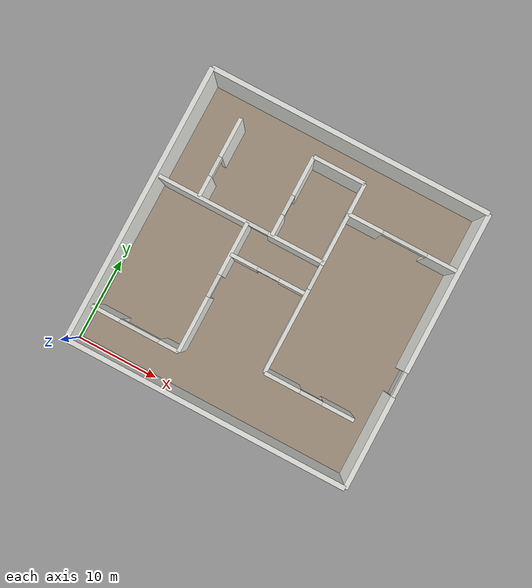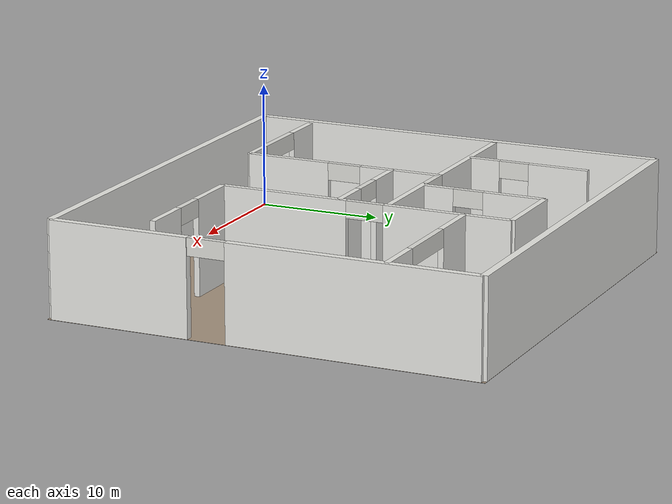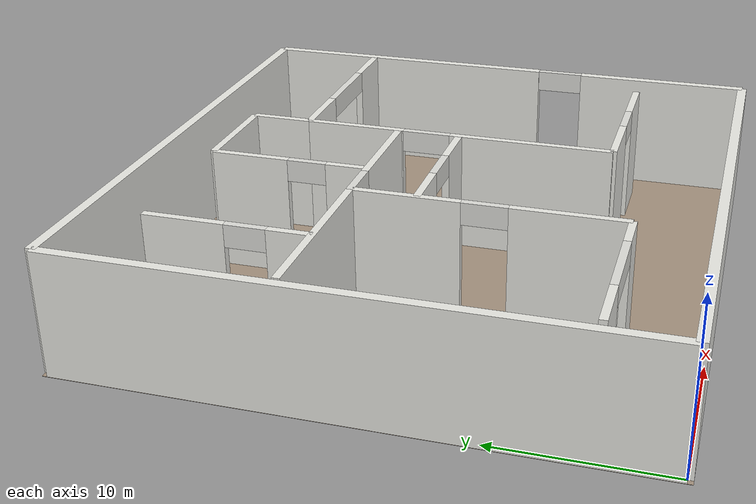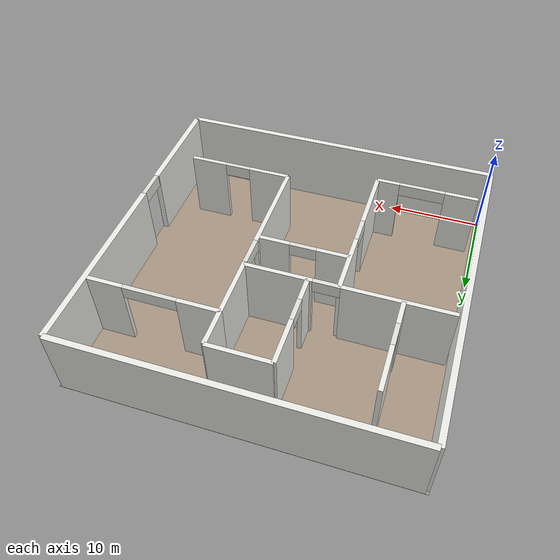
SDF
<sdf version="1.8">
 <world name="semnav_apartment">
  <gravity>0 0 -9.81</gravity>
  <physics name="1ms" type="ode">
   <real_time_update_rate>1000</real_time_update_rate>
   <max_step_size>0.001</max_step_size>
   <real_time_factor>1</real_time_factor>
   <ode>
    <solver>
     <type>quick</type>
     <iters>150</iters>
     <precon_iters>0</precon_iters>
     <sor>1.3999999999999999</sor>
     <use_dynamic_moi_rescaling>true</use_dynamic_moi_rescaling>
    </solver>
    <constraints>
     <cfm>1.0000000000000001e-05</cfm>
     <erp>0.20000000000000001</erp>
     <contact_max_correcting_vel>2000</contact_max_correcting_vel>
     <contact_surface_layer>0.01</contact_surface_layer>
    </constraints>
   </ode>
  </physics>
  <plugin filename="gz-sim-physics-system" name="gz::sim::systems::Physics"/>
  <plugin filename="gz-sim-user-commands-system" name="gz::sim::systems::UserCommands"/>
  <plugin filename="gz-sim-scene-broadcaster-system" name="gz::sim::systems::SceneBroadcaster"/>
  <plugin filename="gz-sim-sensors-system" name="gz::sim::systems::Sensors">
   <render_engine>ogre2</render_engine>
  </plugin>
  <plugin filename="gz-sim-imu-system" name="gz::sim::systems::Imu"/>
  <plugin filename="gz-sim-contact-system" name="gz::sim::systems::Contact"/>
  <scene><ambient>0.45 0.45 0.45</ambient><background>0.72 0.75 0.80</background></scene>
  <light type="directional" name="sun">
   <pose>0 0 8 0 0 0</pose>
   <diffuse>0.85 0.85 0.85 1</diffuse>
   <specular>0.2 0.2 0.2 1</specular>
   <direction>-0.4 0.3 -1</direction>
  </light>
  <light type="point" name="light_room_00">
   <pose>5.700 2.400 7.050 0 0 0</pose>
   <diffuse>0.72 0.72 0.68 1</diffuse>
   <attenuation><range>15.55</range></attenuation>
  </light>
  <light type="point" name="light_room_01">
   <pose>5.850 12.450 7.050 0 0 0</pose>
   <diffuse>0.72 0.72 0.68 1</diffuse>
   <attenuation><range>15.55</range></attenuation>
  </light>
  <light type="point" name="light_room_02">
   <pose>15.975 10.500 7.050 0 0 0</pose>
   <diffuse>0.72 0.72 0.68 1</diffuse>
   <attenuation><range>15.55</range></attenuation>
  </light>
  <light type="point" name="light_room_03">
   <pose>26.250 3.525 7.050 0 0 0</pose>
   <diffuse>0.72 0.72 0.68 1</diffuse>
   <attenuation><range>15.55</range></attenuation>
  </light>
  <light type="point" name="light_room_04">
   <pose>27.375 16.500 7.050 0 0 0</pose>
   <diffuse>0.72 0.72 0.68 1</diffuse>
   <attenuation><range>15.55</range></attenuation>
  </light>
  <light type="point" name="light_room_05">
   <pose>15.975 18.450 7.050 0 0 0</pose>
   <diffuse>0.72 0.72 0.68 1</diffuse>
   <attenuation><range>15.55</range></attenuation>
  </light>
  <light type="point" name="light_room_06">
   <pose>2.850 25.275 7.050 0 0 0</pose>
   <diffuse>0.72 0.72 0.68 1</diffuse>
   <attenuation><range>15.55</range></attenuation>
  </light>
  <light type="point" name="light_room_07">
   <pose>9.900 25.275 7.050 0 0 0</pose>
   <diffuse>0.72 0.72 0.68 1</diffuse>
   <attenuation><range>15.55</range></attenuation>
  </light>
  <light type="point" name="light_room_08">
   <pose>17.550 25.275 7.050 0 0 0</pose>
   <diffuse>0.72 0.72 0.68 1</diffuse>
   <attenuation><range>15.55</range></attenuation>
  </light>
  <light type="point" name="light_room_09">
   <pose>27.375 31.725 7.050 0 0 0</pose>
   <diffuse>0.72 0.72 0.68 1</diffuse>
   <attenuation><range>15.55</range></attenuation>
  </light>
  <model name="apartment_floor">
   <static>true</static>
   <pose>17.1000 16.8000 -0.01 0 0 0</pose>
   <link name="link">
    <collision name="collision"><geometry><box><size>34.8000 34.2000 0.02</size></box></geometry></collision>
    <visual name="visual">
     <geometry><box><size>34.8000 34.2000 0.02</size></box></geometry>
     <material><ambient>0.55 0.50 0.45 1</ambient><diffuse>0.65 0.58 0.50 1</diffuse></material>
    </visual>
   </link>
  </model>
  <model name="wall_south_0">
   <static>true</static>
   <pose>17.1000 0.0000 3.7500 0 0 0</pose>
   <link name="link">
    <collision name="collision"><geometry><box><size>34.2000 0.6000 7.5000</size></box></geometry></collision>
    <visual name="visual">
     <geometry><box><size>34.2000 0.6000 7.5000</size></box></geometry>
     <material><ambient>0.85 0.85 0.85 1</ambient><diffuse>0.92 0.92 0.90 1</diffuse></material>
    </visual>
   </link>
  </model>
  <model name="wall_west_1">
   <static>true</static>
   <pose>0.0000 16.8000 3.7500 0 0 0</pose>
   <link name="link">
    <collision name="collision"><geometry><box><size>0.6000 33.6000 7.5000</size></box></geometry></collision>
    <visual name="visual">
     <geometry><box><size>0.6000 33.6000 7.5000</size></box></geometry>
     <material><ambient>0.85 0.85 0.85 1</ambient><diffuse>0.92 0.92 0.90 1</diffuse></material>
    </visual>
   </link>
  </model>
  <model name="wall_north_2">
   <static>true</static>
   <pose>17.1000 33.6000 3.7500 0 0 0</pose>
   <link name="link">
    <collision name="collision"><geometry><box><size>34.2000 0.6000 7.5000</size></box></geometry></collision>
    <visual name="visual">
     <geometry><box><size>34.2000 0.6000 7.5000</size></box></geometry>
     <material><ambient>0.85 0.85 0.85 1</ambient><diffuse>0.92 0.92 0.90 1</diffuse></material>
    </visual>
   </link>
  </model>
  <model name="wall_east_3">
   <static>true</static>
   <pose>34.2000 5.5500 3.7500 0 0 0</pose>
   <link name="link">
    <collision name="collision"><geometry><box><size>0.6000 11.1000 7.5000</size></box></geometry></collision>
    <visual name="visual">
     <geometry><box><size>0.6000 11.1000 7.5000</size></box></geometry>
     <material><ambient>0.85 0.85 0.85 1</ambient><diffuse>0.92 0.92 0.90 1</diffuse></material>
    </visual>
   </link>
  </model>
  <model name="wall_east_4">
   <static>true</static>
   <pose>34.2000 23.8500 3.7500 0 0 0</pose>
   <link name="link">
    <collision name="collision"><geometry><box><size>0.6000 19.5000 7.5000</size></box></geometry></collision>
    <visual name="visual">
     <geometry><box><size>0.6000 19.5000 7.5000</size></box></geometry>
     <material><ambient>0.85 0.85 0.85 1</ambient><diffuse>0.92 0.92 0.90 1</diffuse></material>
    </visual>
   </link>
  </model>
  <model name="wall_master_south_5">
   <static>true</static>
   <pose>2.4750 4.5000 3.7500 0 0 0</pose>
   <link name="link">
    <collision name="collision"><geometry><box><size>3.4500 0.4500 7.5000</size></box></geometry></collision>
    <visual name="visual">
     <geometry><box><size>3.4500 0.4500 7.5000</size></box></geometry>
     <material><ambient>0.85 0.85 0.85 1</ambient><diffuse>0.92 0.92 0.90 1</diffuse></material>
    </visual>
   </link>
  </model>
  <model name="wall_master_south_6">
   <static>true</static>
   <pose>10.2000 4.5000 3.7500 0 0 0</pose>
   <link name="link">
    <collision name="collision"><geometry><box><size>2.4000 0.4500 7.5000</size></box></geometry></collision>
    <visual name="visual">
     <geometry><box><size>2.4000 0.4500 7.5000</size></box></geometry>
     <material><ambient>0.85 0.85 0.85 1</ambient><diffuse>0.92 0.92 0.90 1</diffuse></material>
    </visual>
   </link>
  </model>
  <model name="wall_master_east_7">
   <static>true</static>
   <pose>11.4000 7.8750 3.7500 0 0 0</pose>
   <link name="link">
    <collision name="collision"><geometry><box><size>0.4500 6.7500 7.5000</size></box></geometry></collision>
    <visual name="visual">
     <geometry><box><size>0.4500 6.7500 7.5000</size></box></geometry>
     <material><ambient>0.85 0.85 0.85 1</ambient><diffuse>0.92 0.92 0.90 1</diffuse></material>
    </visual>
   </link>
  </model>
  <model name="wall_master_east_8">
   <static>true</static>
   <pose>11.4000 17.1750 3.7500 0 0 0</pose>
   <link name="link">
    <collision name="collision"><geometry><box><size>0.4500 6.4500 7.5000</size></box></geometry></collision>
    <visual name="visual">
     <geometry><box><size>0.4500 6.4500 7.5000</size></box></geometry>
     <material><ambient>0.85 0.85 0.85 1</ambient><diffuse>0.92 0.92 0.90 1</diffuse></material>
    </visual>
   </link>
  </model>
  <model name="wall_bed2_north_9">
   <static>true</static>
   <pose>13.0500 16.5000 3.7500 0 0 0</pose>
   <link name="link">
    <collision name="collision"><geometry><box><size>3.3000 0.4500 7.5000</size></box></geometry></collision>
    <visual name="visual">
     <geometry><box><size>3.3000 0.4500 7.5000</size></box></geometry>
     <material><ambient>0.85 0.85 0.85 1</ambient><diffuse>0.92 0.92 0.90 1</diffuse></material>
    </visual>
   </link>
  </model>
  <model name="wall_bed2_north_10">
   <static>true</static>
   <pose>19.0500 16.5000 3.7500 0 0 0</pose>
   <link name="link">
    <collision name="collision"><geometry><box><size>3.3000 0.4500 7.5000</size></box></geometry></collision>
    <visual name="visual">
     <geometry><box><size>3.3000 0.4500 7.5000</size></box></geometry>
     <material><ambient>0.85 0.85 0.85 1</ambient><diffuse>0.92 0.92 0.90 1</diffuse></material>
    </visual>
   </link>
  </model>
  <model name="wall_kitchen_north_11">
   <static>true</static>
   <pose>22.8750 6.9000 3.7500 0 0 0</pose>
   <link name="link">
    <collision name="collision"><geometry><box><size>4.3500 0.4500 7.5000</size></box></geometry></collision>
    <visual name="visual">
     <geometry><box><size>4.3500 0.4500 7.5000</size></box></geometry>
     <material><ambient>0.85 0.85 0.85 1</ambient><diffuse>0.92 0.92 0.90 1</diffuse></material>
    </visual>
   </link>
  </model>
  <model name="wall_kitchen_north_12">
   <static>true</static>
   <pose>29.7000 6.9000 3.7500 0 0 0</pose>
   <link name="link">
    <collision name="collision"><geometry><box><size>3.9000 0.4500 7.5000</size></box></geometry></collision>
    <visual name="visual">
     <geometry><box><size>3.9000 0.4500 7.5000</size></box></geometry>
     <material><ambient>0.85 0.85 0.85 1</ambient><diffuse>0.92 0.92 0.90 1</diffuse></material>
    </visual>
   </link>
  </model>
  <model name="wall_living_west_13">
   <static>true</static>
   <pose>20.7000 12.0000 3.7500 0 0 0</pose>
   <link name="link">
    <collision name="collision"><geometry><box><size>0.4500 10.2000 7.5000</size></box></geometry></collision>
    <visual name="visual">
     <geometry><box><size>0.4500 10.2000 7.5000</size></box></geometry>
     <material><ambient>0.85 0.85 0.85 1</ambient><diffuse>0.92 0.92 0.90 1</diffuse></material>
    </visual>
   </link>
  </model>
  <model name="wall_living_west_14">
   <static>true</static>
   <pose>20.7000 23.2500 3.7500 0 0 0</pose>
   <link name="link">
    <collision name="collision"><geometry><box><size>0.4500 6.3000 7.5000</size></box></geometry></collision>
    <visual name="visual">
     <geometry><box><size>0.4500 6.3000 7.5000</size></box></geometry>
     <material><ambient>0.85 0.85 0.85 1</ambient><diffuse>0.92 0.92 0.90 1</diffuse></material>
    </visual>
   </link>
  </model>
  <model name="wall_living_north_15">
   <static>true</static>
   <pose>22.8000 26.4000 3.7500 0 0 0</pose>
   <link name="link">
    <collision name="collision"><geometry><box><size>4.2000 0.4500 7.5000</size></box></geometry></collision>
    <visual name="visual">
     <geometry><box><size>4.2000 0.4500 7.5000</size></box></geometry>
     <material><ambient>0.85 0.85 0.85 1</ambient><diffuse>0.92 0.92 0.90 1</diffuse></material>
    </visual>
   </link>
  </model>
  <model name="wall_living_north_16">
   <static>true</static>
   <pose>32.2500 26.4000 3.7500 0 0 0</pose>
   <link name="link">
    <collision name="collision"><geometry><box><size>3.9000 0.4500 7.5000</size></box></geometry></collision>
    <visual name="visual">
     <geometry><box><size>3.9000 0.4500 7.5000</size></box></geometry>
     <material><ambient>0.85 0.85 0.85 1</ambient><diffuse>0.92 0.92 0.90 1</diffuse></material>
    </visual>
   </link>
  </model>
  <model name="wall_upper_south_17">
   <static>true</static>
   <pose>5.8500 20.4000 3.7500 0 0 0</pose>
   <link name="link">
    <collision name="collision"><geometry><box><size>10.8000 0.4500 7.5000</size></box></geometry></collision>
    <visual name="visual">
     <geometry><box><size>10.8000 0.4500 7.5000</size></box></geometry>
     <material><ambient>0.85 0.85 0.85 1</ambient><diffuse>0.92 0.92 0.90 1</diffuse></material>
    </visual>
   </link>
  </model>
  <model name="wall_upper_south_18">
   <static>true</static>
   <pose>17.3250 20.4000 3.7500 0 0 0</pose>
   <link name="link">
    <collision name="collision"><geometry><box><size>6.7500 0.4500 7.5000</size></box></geometry></collision>
    <visual name="visual">
     <geometry><box><size>6.7500 0.4500 7.5000</size></box></geometry>
     <material><ambient>0.85 0.85 0.85 1</ambient><diffuse>0.92 0.92 0.90 1</diffuse></material>
    </visual>
   </link>
  </model>
  <model name="wall_bath1_east_19">
   <static>true</static>
   <pose>5.4000 21.6750 3.7500 0 0 0</pose>
   <link name="link">
    <collision name="collision"><geometry><box><size>0.4500 2.5500 7.5000</size></box></geometry></collision>
    <visual name="visual">
     <geometry><box><size>0.4500 2.5500 7.5000</size></box></geometry>
     <material><ambient>0.85 0.85 0.85 1</ambient><diffuse>0.92 0.92 0.90 1</diffuse></material>
    </visual>
   </link>
  </model>
  <model name="wall_bath1_east_20">
   <static>true</static>
   <pose>5.4000 27.7500 3.7500 0 0 0</pose>
   <link name="link">
    <collision name="collision"><geometry><box><size>0.4500 4.8000 7.5000</size></box></geometry></collision>
    <visual name="visual">
     <geometry><box><size>0.4500 4.8000 7.5000</size></box></geometry>
     <material><ambient>0.85 0.85 0.85 1</ambient><diffuse>0.92 0.92 0.90 1</diffuse></material>
    </visual>
   </link>
  </model>
  <model name="wall_bed3_east_21">
   <static>true</static>
   <pose>14.4000 21.6750 3.7500 0 0 0</pose>
   <link name="link">
    <collision name="collision"><geometry><box><size>0.4500 2.5500 7.5000</size></box></geometry></collision>
    <visual name="visual">
     <geometry><box><size>0.4500 2.5500 7.5000</size></box></geometry>
     <material><ambient>0.85 0.85 0.85 1</ambient><diffuse>0.92 0.92 0.90 1</diffuse></material>
    </visual>
   </link>
  </model>
  <model name="wall_bed3_east_22">
   <static>true</static>
   <pose>14.4000 27.7500 3.7500 0 0 0</pose>
   <link name="link">
    <collision name="collision"><geometry><box><size>0.4500 4.8000 7.5000</size></box></geometry></collision>
    <visual name="visual">
     <geometry><box><size>0.4500 4.8000 7.5000</size></box></geometry>
     <material><ambient>0.85 0.85 0.85 1</ambient><diffuse>0.92 0.92 0.90 1</diffuse></material>
    </visual>
   </link>
  </model>
  <model name="wall_bath2_east_23">
   <static>true</static>
   <pose>20.7000 28.2750 3.7500 0 0 0</pose>
   <link name="link">
    <collision name="collision"><geometry><box><size>0.4500 3.7500 7.5000</size></box></geometry></collision>
    <visual name="visual">
     <geometry><box><size>0.4500 3.7500 7.5000</size></box></geometry>
     <material><ambient>0.85 0.85 0.85 1</ambient><diffuse>0.92 0.92 0.90 1</diffuse></material>
    </visual>
   </link>
  </model>
  <model name="wall_bath2_north_24">
   <static>true</static>
   <pose>17.5500 30.1500 3.7500 0 0 0</pose>
   <link name="link">
    <collision name="collision"><geometry><box><size>6.3000 0.4500 7.5000</size></box></geometry></collision>
    <visual name="visual">
     <geometry><box><size>6.3000 0.4500 7.5000</size></box></geometry>
     <material><ambient>0.85 0.85 0.85 1</ambient><diffuse>0.92 0.92 0.90 1</diffuse></material>
    </visual>
   </link>
  </model>
  <model name="lintel_door_entry">
   <static>true</static>
   <pose>34.2000 12.6000 6.8250 0 0 0</pose>
   <link name="link">
    <collision name="collision"><geometry><box><size>0.4500 3.0000 1.3500</size></box></geometry></collision>
    <visual name="visual">
     <geometry><box><size>0.4500 3.0000 1.3500</size></box></geometry>
     <material><ambient>0.80 0.80 0.80 1</ambient><diffuse>0.88 0.88 0.86 1</diffuse></material>
    </visual>
   </link>
  </model>
  <model name="lintel_door_master">
   <static>true</static>
   <pose>11.4000 12.6000 6.8250 0 0 0</pose>
   <link name="link">
    <collision name="collision"><geometry><box><size>0.4500 2.7000 1.3500</size></box></geometry></collision>
    <visual name="visual">
     <geometry><box><size>0.4500 2.7000 1.3500</size></box></geometry>
     <material><ambient>0.80 0.80 0.80 1</ambient><diffuse>0.88 0.88 0.86 1</diffuse></material>
    </visual>
   </link>
  </model>
  <model name="lintel_door_second_bedroom">
   <static>true</static>
   <pose>16.0500 16.5000 6.8250 0 0 0</pose>
   <link name="link">
    <collision name="collision"><geometry><box><size>2.7000 0.4500 1.3500</size></box></geometry></collision>
    <visual name="visual">
     <geometry><box><size>2.7000 0.4500 1.3500</size></box></geometry>
     <material><ambient>0.80 0.80 0.80 1</ambient><diffuse>0.88 0.88 0.86 1</diffuse></material>
    </visual>
   </link>
  </model>
  <model name="lintel_door_kitchen">
   <static>true</static>
   <pose>26.4000 6.9000 6.8250 0 0 0</pose>
   <link name="link">
    <collision name="collision"><geometry><box><size>2.7000 0.4500 1.3500</size></box></geometry></collision>
    <visual name="visual">
     <geometry><box><size>2.7000 0.4500 1.3500</size></box></geometry>
     <material><ambient>0.80 0.80 0.80 1</ambient><diffuse>0.88 0.88 0.86 1</diffuse></material>
    </visual>
   </link>
  </model>
  <model name="lintel_door_living">
   <static>true</static>
   <pose>20.7000 18.6000 6.8250 0 0 0</pose>
   <link name="link">
    <collision name="collision"><geometry><box><size>0.4500 3.0000 1.3500</size></box></geometry></collision>
    <visual name="visual">
     <geometry><box><size>0.4500 3.0000 1.3500</size></box></geometry>
     <material><ambient>0.80 0.80 0.80 1</ambient><diffuse>0.88 0.88 0.86 1</diffuse></material>
    </visual>
   </link>
  </model>
  <model name="lintel_door_bedroom3">
   <static>true</static>
   <pose>12.6000 20.4000 6.8250 0 0 0</pose>
   <link name="link">
    <collision name="collision"><geometry><box><size>2.7000 0.4500 1.3500</size></box></geometry></collision>
    <visual name="visual">
     <geometry><box><size>2.7000 0.4500 1.3500</size></box></geometry>
     <material><ambient>0.80 0.80 0.80 1</ambient><diffuse>0.88 0.88 0.86 1</diffuse></material>
    </visual>
   </link>
  </model>
  <model name="lintel_door_bathroom1">
   <static>true</static>
   <pose>5.4000 24.1500 6.8250 0 0 0</pose>
   <link name="link">
    <collision name="collision"><geometry><box><size>0.4500 2.4000 1.3500</size></box></geometry></collision>
    <visual name="visual">
     <geometry><box><size>0.4500 2.4000 1.3500</size></box></geometry>
     <material><ambient>0.80 0.80 0.80 1</ambient><diffuse>0.88 0.88 0.86 1</diffuse></material>
    </visual>
   </link>
  </model>
  <model name="lintel_door_bathroom2">
   <static>true</static>
   <pose>14.4000 24.1500 6.8250 0 0 0</pose>
   <link name="link">
    <collision name="collision"><geometry><box><size>0.4500 2.4000 1.3500</size></box></geometry></collision>
    <visual name="visual">
     <geometry><box><size>0.4500 2.4000 1.3500</size></box></geometry>
     <material><ambient>0.80 0.80 0.80 1</ambient><diffuse>0.88 0.88 0.86 1</diffuse></material>
    </visual>
   </link>
  </model>
  <model name="lintel_door_south_balcony">
   <static>true</static>
   <pose>6.6000 4.5000 6.8250 0 0 0</pose>
   <link name="link">
    <collision name="collision"><geometry><box><size>4.8000 0.4500 1.3500</size></box></geometry></collision>
    <visual name="visual">
     <geometry><box><size>4.8000 0.4500 1.3500</size></box></geometry>
     <material><ambient>0.80 0.80 0.80 1</ambient><diffuse>0.88 0.88 0.86 1</diffuse></material>
    </visual>
   </link>
  </model>
  <model name="lintel_door_north_balcony">
   <static>true</static>
   <pose>27.6000 26.4000 6.8250 0 0 0</pose>
   <link name="link">
    <collision name="collision"><geometry><box><size>5.4000 0.4500 1.3500</size></box></geometry></collision>
    <visual name="visual">
     <geometry><box><size>5.4000 0.4500 1.3500</size></box></geometry>
     <material><ambient>0.80 0.80 0.80 1</ambient><diffuse>0.88 0.88 0.86 1</diffuse></material>
    </visual>
   </link>
  </model>
 </world>
</sdf>
